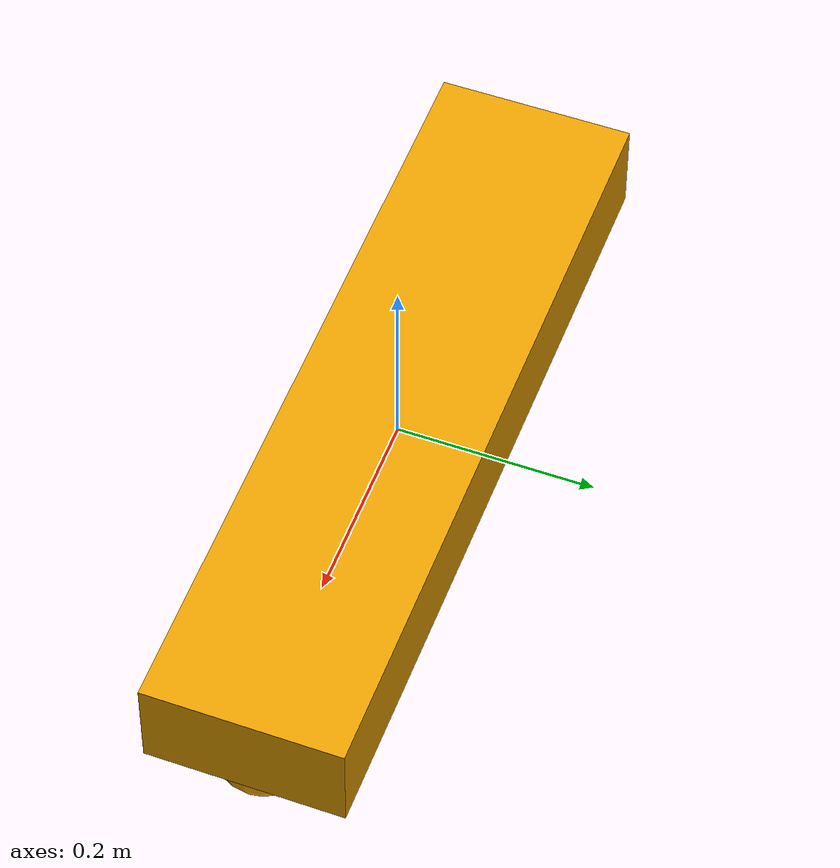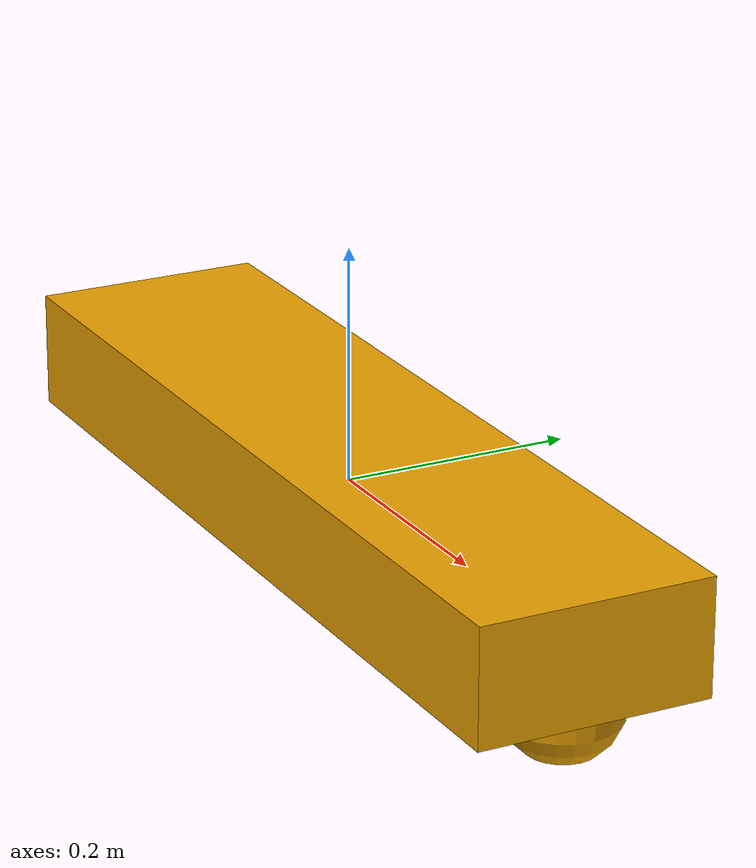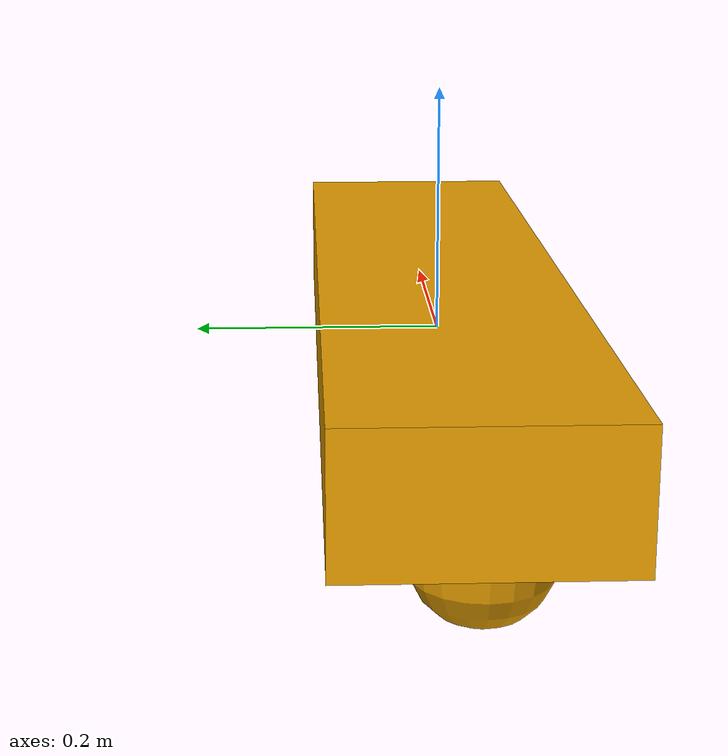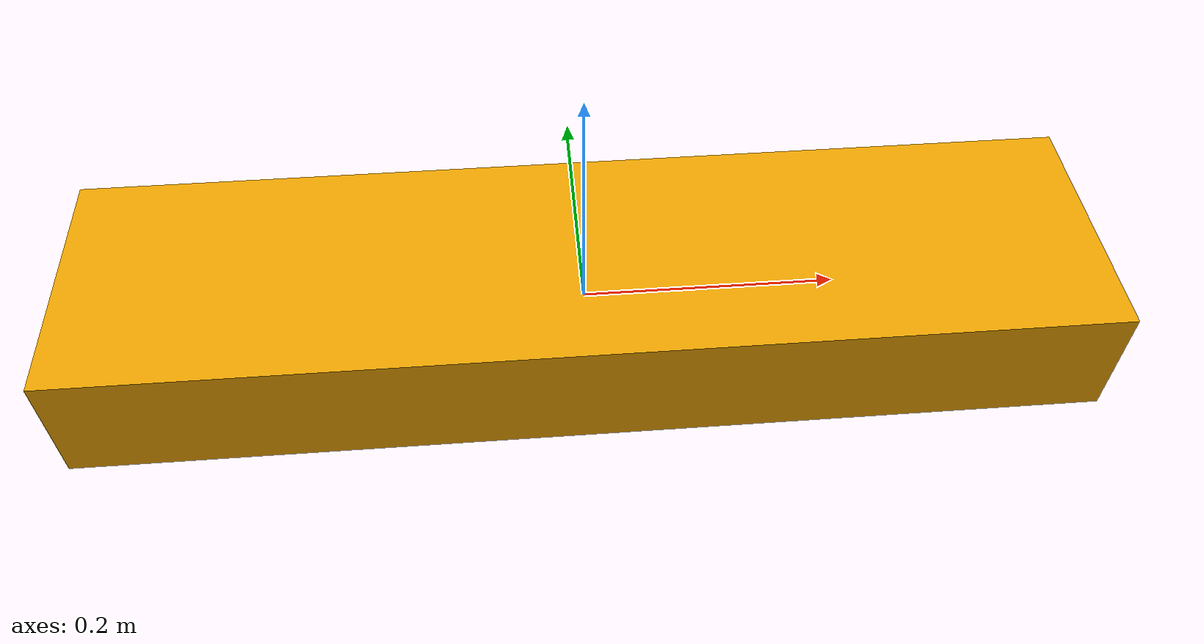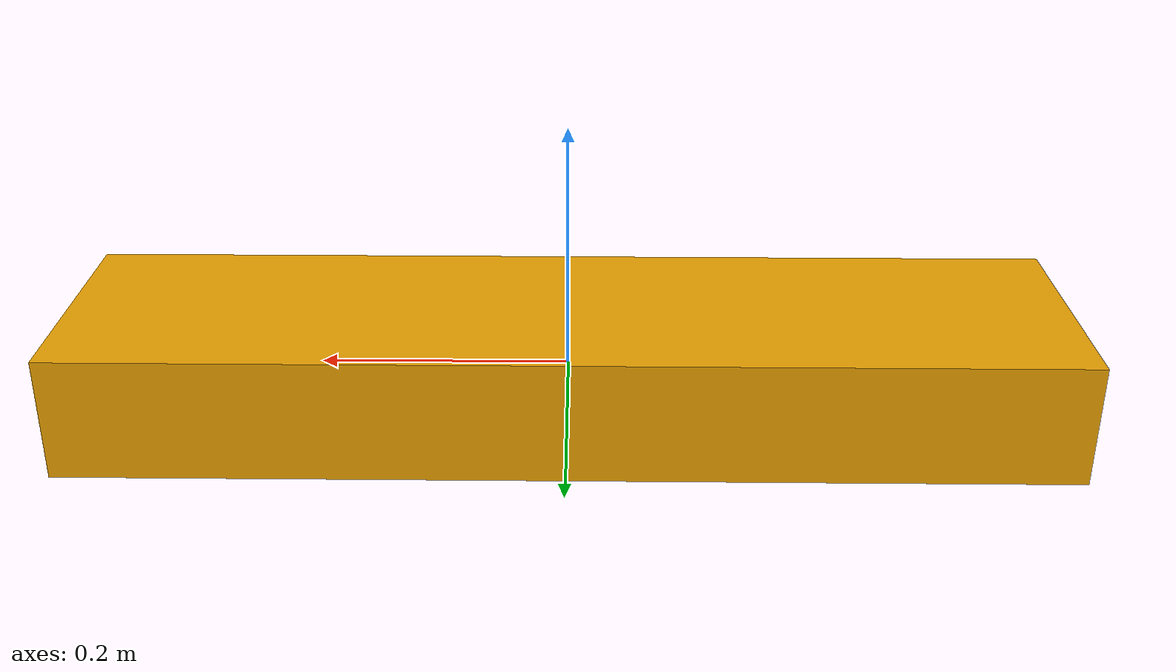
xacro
<?xml version='1.0'?>

<robot name="mybot" xmlns:xacro="http://www.ros.org/wiki/xacro">

<!-- chasis -->
<xacro:property name="chasisX" value="0.8"/>
<xacro:property name="chasisY" value="0.2"/>
<xacro:property name="chasisZ" value="0.1"/>
<!-- caster -->
<xacro:property name="casterX" value="0.35"/>
<xacro:property name="casterY" value="0"/>
<xacro:property name="casterZ" value="-0.05"/>

<link name='chassis'>
    <pose>0 0 0.1 0 0 0</pose>

    <inertial>
      <mass value="10.0"/>
      <origin xyz="0.0 0 0.1" rpy=" 0 0 0"/>
      <inertia
          ixx="0.5" ixy="0" ixz="0"
          iyy="1.0" iyz="0"
          izz="0.1"
      />
    </inertial>

    <collision name='collision'>
      <geometry>
        <box size="${chasisX} ${chasisY} ${chasisZ}"/>
      </geometry>
    </collision>

    <visual name='chassis_visual'>
      <origin xyz="0 0 0" rpy=" 0 0 0"/>
      <geometry>
        <box size="${chasisX} ${chasisY} ${chasisZ}"/>
      </geometry>
    </visual>

    <collision name='caster1_collision'>
      <origin xyz="${casterX} ${casterY} ${casterZ}" rpy=" 0 0 0"/>
      <geometry>
        <sphere radius="0.05"/>
      </geometry>
      <surface>
        <friction>
          <ode>
            <mu>0</mu>
            <mu2>0</mu2>
            <slip1>1.0</slip1>
            <slip2>1.0</slip2>
          </ode>
        </friction>
      </surface>
    </collision>
    <visual name='caster1_visual'>
	<origin xyz="${casterX} ${casterY} ${casterZ}" rpy=" 0 0 0"/>
      <geometry>
        <sphere radius="0.05"/>
      </geometry>
    </visual>

    <collision name='caster2_collision'>
      <origin xyz="-${casterX} ${casterY} ${casterZ}" rpy=" 0 0 0"/>
      <geometry>
        <sphere radius="0.05"/>
      </geometry>
      <surface>
        <friction>
          <ode>
            <mu>0</mu>
            <mu2>0</mu2>
            <slip1>1.0</slip1>
            <slip2>1.0</slip2>
          </ode>
        </friction>
      </surface>
    </collision>
    <visual name='caster2_visual'>
	<origin xyz="-${casterX} ${casterY} ${casterZ}" rpy=" 0 0 0"/>
      <geometry>
        <sphere radius="0.05"/>
      </geometry>
    </visual>
  </link>
</robot>
